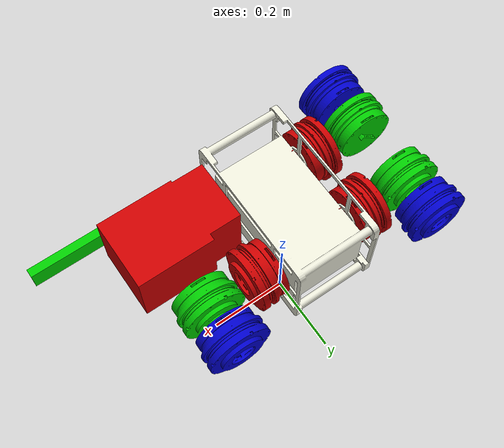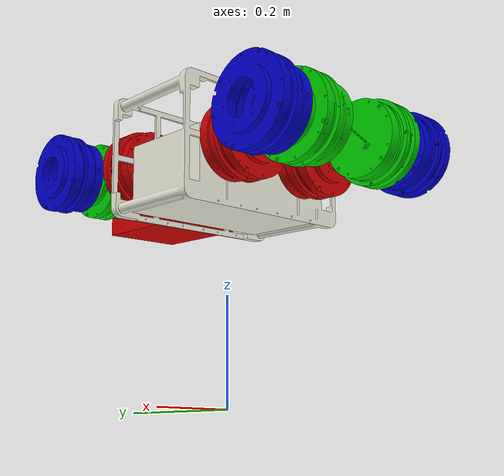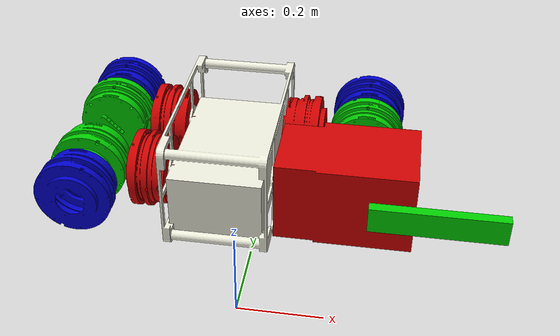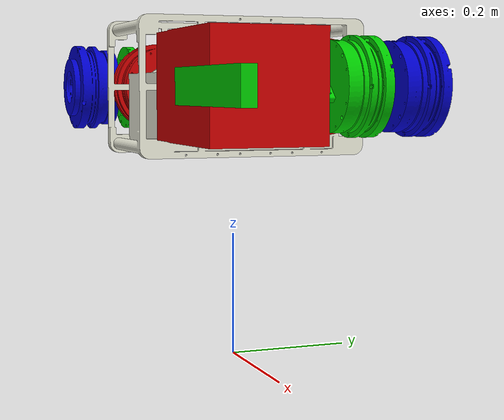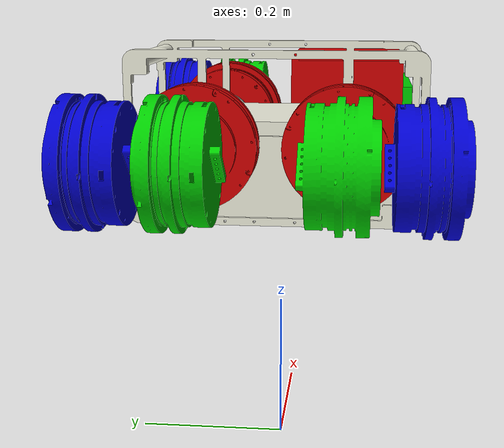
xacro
<?xml version="1.0"?>
<robot name="aidin_m1">

  <material name="black">
    <color rgba="0.0 0.0 0.0 1.0"/>
  </material>
  <material name="blue">
    <color rgba="0.0 0.0 0.8 1.0"/>
  </material>
  <material name="green">
    <color rgba="0.0 0.8 0.0 1.0"/>
  </material>
  <material name="grey">
    <color rgba="0.2 0.2 0.2 1.0"/>
  </material>
  <material name="silver">
    <color rgba="0.913725490196 0.913725490196 0.847058823529 1.0"/>
  </material>
  <material name="orange">
    <color rgba="1.0 0.423529411765 0.0392156862745 1.0"/>
  </material>
  <material name="brown">
    <color rgba="0.870588235294 0.811764705882 0.764705882353 1.0"/>
  </material>
  <material name="red">
    <color rgba="0.8 0.0 0.0 1.0"/>
  </material>
  <material name="yellow">
    <color rgba="0.8 0.8 0.0 1.0"/>
  </material>
  <material name="white">
    <color rgba="1.0 1.0 1.0 1.0"/>
  </material>

<!--////////////////////////////////   Odom    ////////////////////////////////-->

  <!-- "world" link -->
  <link name="world"/>
  <gazebo reference="world">
    <static>true</static>
  </gazebo>

  <joint name="odom_joint" type="fixed">
    <child link="body"/>
    <parent link="world"/>
    <origin xyz="0 0 0.440" rpy="0 0 0"/>
  </joint>

<!--////////////////////////////////   Body    ////////////////////////////////-->

  <link name="body">
    <inertial>
      <mass value="10"/>
      <origin xyz="0 0 0" rpy="0 0 0"/>
      <inertia ixx="0.15296333" ixy="0" ixz="0" iyy="0.07221333" iyz="0" izz="0.1474166667"/>
    </inertial>

    <collision>
      <origin xyz="0 0 0" rpy="0 0 0"/>
      <geometry>
        <box size="0.200 0.370 0.216"/>
      </geometry>
    </collision>

    <visual name="body_visual">
      <origin xyz="0 0 0" rpy="0 0 0"/>
      <geometry>
        <mesh filename="/home/eunseop/dev_ws/src/m1/meshes/body_1.stl" scale="0.001 0.001 0.001"/>
      </geometry>
      <material name="silver"/>
    </visual>
  </link>
  <gazebo reference="body">
    <material>Gazebo/DarkGrey</material>
  </gazebo>

<!--//////////////////////////////// RF LINKS /////////////////////////////////-->

  <link name="RF_scap">
    <inertial>
      <mass value="6"/>
      <origin xyz="0 0 0" rpy="0 0 0"/>
      <inertia ixx="0.73716790" ixy="0.130721360" ixz="0" iyy="0.431162858" iyz="0" izz="0.477083568"/>
    </inertial>

    <collision>
      <origin xyz="0 0 0" rpy="0 0 0"/>
      <geometry>
        <cylinder length="0.0760" radius="0.0730"/>
      </geometry>
    </collision>

    <visual name="RF_scap_vis_cover">
      <origin xyz="0 0 0" rpy="0 0 0"/>
      <geometry>
        <mesh filename="/home/eunseop/dev_ws/src/m1/meshes/sc_cover_RF_1.stl" scale="0.001 0.001 0.001"/>
      </geometry>
      <material name="red"/>
    </visual>
  </link>
  <gazebo reference="RF_scap">
    <material>Gazebo/Red</material>
  </gazebo>

  <link name="RF_hip">
    <inertial>
      <mass value="0.600"/>
      <origin xyz="-0.125 0 0" rpy="0 0 0"/>
      <inertia ixx="0.001541527" ixy="0.000007051" ixz="-0.000001356" iyy="0.001938779" iyz="0.000000659" izz="0.001547151"/>
    </inertial>

    <collision>
      <origin xyz="-0.125 0 0" rpy="0 0 0"/>
      <geometry>
        <cylinder length="0.0760" radius="0.0730"/>
      </geometry>
    </collision>

    <visual name="RF_hip_vis_cover">
      <origin xyz="-0.125 0 0" rpy="0 0 0"/>
      <geometry>
        <box size="0.250 0.050 0.020"/>
      </geometry>
      <material name="green"/>
    </visual>
  </link>
  <gazebo reference="RF_hip">
    <material>Gazebo/Green</material>
  </gazebo>

<!--//////////////////////////////// RF JOINTS ////////////////////////////////-->

  <joint name="RFJ_scap" type="revolute">
    <parent link="body"/>
    <child link="RF_scap"/>
    <origin xyz="0.282 -0.08750 0" rpy="-1.57079 0 -1.57079"/>
    <axis xyz="0 0 1"/>
    <limit lower="-3.14" upper="3.14" effort="50.0" velocity="10"/> <!--I dont know what it is-->
    <dynamics damping="0.7"/>
  </joint>

  <joint name="RFJ_hip" type="revolute">
    <parent link="RF_scap"/>
    <child link="RF_hip"/>
    <origin xyz="0.088 0 0" rpy="-1.57079  1.57079 -1.57079"/>
    <axis xyz="0 0 1"/>
    <limit lower="-3.14" upper="3.14" effort="50.0" velocity="10"/>
    <dynamics damping="0.7"/>
  </joint>

<!--//////////////////////////////// LF LINKS /////////////////////////////////-->

  <link name="LF_scap">
    <inertial>
      <mass value="1.80"/>
      <origin xyz="0 0 0" rpy="0 0 0"/>
      <inertia ixx="0.001541527" ixy="0.000007051" ixz="-0.000001356" iyy="0.001938779" iyz="0.000000659" izz="0.001547151"/>
    </inertial>

    <collision>
      <origin xyz="0 0 0" rpy="0 0 0"/>
      <geometry>
        <cylinder length="0.0760" radius="0.0730"/>
      </geometry>
    </collision>

    <visual name="LF_scap_vis_cover">
      <origin xyz="0 0 0" rpy="0 0 0"/>
      <geometry>
        <mesh filename="/home/eunseop/dev_ws/src/m1/meshes/actuator_1.stl" scale="0.001 0.001 0.001"/>
      </geometry>
      <material name="red"/>
    </visual>
  </link>
  <gazebo reference="LF_scap">
    <material>Gazebo/Red</material>
  </gazebo>

  <link name="LF_hip">
    <inertial>
      <mass value="1.80"/>
      <origin xyz="0 0 0" rpy="0 0 0"/>
      <inertia ixx="0.001541527" ixy="0.000007051" ixz="-0.000001356" iyy="0.001938779" iyz="0.000000659" izz="0.001547151"/>
    </inertial>

    <collision>
      <origin xyz="0 0 0" rpy="0 0 0"/>
      <geometry>
        <cylinder length="0.0760" radius="0.0730"/>
      </geometry>
    </collision>

    <visual name="LF_hip_vis_cover">
      <origin xyz="0 0 0" rpy="0 0 0"/>
      <geometry>
        <mesh filename="/home/eunseop/dev_ws/src/m1/meshes/actuator_1.stl" scale="0.001 0.001 0.001"/>
      </geometry>
      <material name="green"/>
    </visual>
  </link>
  <gazebo reference="LF_hip">
    <material>Gazebo/Green</material>
  </gazebo>

  <link name="LF_knee">
    <inertial>
      <mass value="1.80"/>
      <origin xyz="0 0 0" rpy="0 0 0"/>
      <inertia ixx="0.001541527" ixy="0.000007051" ixz="-0.000001356" iyy="0.001938779" iyz="0.000000659" izz="0.001547151"/>
    </inertial>

    <collision>
      <origin xyz="0 0 0" rpy="0 0 0"/>
      <geometry>
        <cylinder length="0.0760" radius="0.0730"/>
      </geometry>
    </collision>

    <visual name="LF_knee_vis_cover">
      <origin xyz="0 0 0" rpy="0 0 0"/>
      <geometry>
        <mesh filename="/home/eunseop/dev_ws/src/m1/meshes/actuator_1.stl" scale="0.001 0.001 0.001"/>
      </geometry>
      <material name="blue"/>
    </visual>
  </link>
  <gazebo reference="LF_knee">
    <material>Gazebo/Blue</material>
  </gazebo>

<!--//////////////////////////////// LF JOINTS ////////////////////////////////-->

  <joint name="LFJ_scap" type="continuous">
    <parent link="body"/>
    <child link="LF_scap"/>
    <origin xyz="0.138 0.08750 0" rpy="0 1.5708 0"/>
    <axis xyz="0 0 1"/>
    <dynamics damping="0.7"/>
  </joint>

  <joint name="LFJ_hip" type="continuous">
    <parent link="LF_scap"/>
    <child link="LF_hip"/>
    <origin xyz="0 0 0.122" rpy="-1.5708 0 0"/>
    <axis xyz="0 0 1"/>
    <dynamics damping="0.7"/>
  </joint>

  <joint name="LFJ_knee" type="continuous">
    <parent link="LF_hip"/>
    <child link="LF_knee"/>
    <origin xyz="0 0 0.091" rpy="0 0 0"/>
    <axis xyz="0 0 1"/>
    <dynamics damping="0.7"/>
  </joint>

<!--//////////////////////////////// LB LINKS /////////////////////////////////-->

  <link name="LB_scap">
    <inertial>
      <mass value="1.80"/>
      <origin xyz="0 0 0" rpy="0 0 0"/>
      <inertia ixx="0.001541527" ixy="0.000007051" ixz="-0.000001356" iyy="0.001938779" iyz="0.000000659" izz="0.001547151"/>
    </inertial>

    <collision>
      <origin xyz="0 0 0" rpy="0 0 0"/>
      <geometry>
        <cylinder length="0.0760" radius="0.0730"/>
      </geometry>
    </collision>

    <visual name="LB_scap_vis_cover">
      <origin xyz="0 0 0" rpy="0 0 0"/>
      <geometry>
        <mesh filename="/home/eunseop/dev_ws/src/m1/meshes/actuator_1.stl" scale="0.001 0.001 0.001"/>
      </geometry>
      <material name="red"/>
    </visual>
  </link>
  <gazebo reference="LB_scap">
    <material>Gazebo/Red</material>
  </gazebo>

  <link name="LB_hip">
    <inertial>
      <mass value="1.80"/>
      <origin xyz="0 0 0" rpy="0 0 0"/>
      <inertia ixx="0.001541527" ixy="0.000007051" ixz="-0.000001356" iyy="0.001938779" iyz="0.000000659" izz="0.001547151"/>
    </inertial>

    <collision>
      <origin xyz="0 0 0" rpy="0 0 0"/>
      <geometry>
        <cylinder length="0.0760" radius="0.0730"/>
      </geometry>
    </collision>

    <visual name="LB_hip_vis_cover">
      <origin xyz="0 0 0" rpy="0 0 0"/>
      <geometry>
        <mesh filename="/home/eunseop/dev_ws/src/m1/meshes/actuator_1.stl" scale="0.001 0.001 0.001"/>
      </geometry>
      <material name="green"/>
    </visual>
  </link>
  <gazebo reference="LB_hip">
    <material>Gazebo/Green</material>
  </gazebo>

  <link name="LB_knee">
    <inertial>
      <mass value="1.80"/>
      <origin xyz="0 0 0" rpy="0 0 0"/>
      <inertia ixx="0.001541527" ixy="0.000007051" ixz="-0.000001356" iyy="0.001938779" iyz="0.000000659" izz="0.001547151"/>
    </inertial>

    <collision>
      <origin xyz="0 0 0" rpy="0 0 0"/>
      <geometry>
        <cylinder length="0.0760" radius="0.0730"/>
      </geometry>
    </collision>

    <visual name="LB_knee_vis_cover">
      <origin xyz="0 0 0" rpy="0 0 0"/>
      <geometry>
        <mesh filename="/home/eunseop/dev_ws/src/m1/meshes/actuator_1.stl" scale="0.001 0.001 0.001"/>
      </geometry>
      <material name="blue"/>
    </visual>
  </link>
  <gazebo reference="LB_knee">
    <material>Gazebo/Blue</material>
  </gazebo>

<!--//////////////////////////////// LB JOINTS ////////////////////////////////-->

  <joint name="LBJ_scap" type="continuous">
    <parent link="body"/>
    <child link="LB_scap"/>
    <origin xyz="-0.138 0.08750 0" rpy="0 1.5708 3.14159"/>
    <axis xyz="0 0 1"/>
    <dynamics damping="0.7"/>
  </joint>

  <joint name="LBJ_hip" type="continuous">
    <parent link="LB_scap"/>
    <child link="LB_hip"/>
    <origin xyz="0 0 0.122" rpy="1.5708 0 0"/>
    <axis xyz="0 0 1"/>
    <dynamics damping="0.7"/>
  </joint>

  <joint name="LBJ_knee" type="continuous">
    <parent link="LB_hip"/>
    <child link="LB_knee"/>
    <origin xyz="0 0 0.091" rpy="0 0 0"/>
    <axis xyz="0 0 1"/>
    <dynamics damping="0.7"/>
  </joint>

<!--//////////////////////////////// RB LINKS /////////////////////////////////-->

  <link name="RB_scap">
    <inertial>
      <mass value="1.80"/>
      <origin xyz="0 0 0" rpy="0 0 0"/>
      <inertia ixx="0.001541527" ixy="0.000007051" ixz="-0.000001356" iyy="0.001938779" iyz="0.000000659" izz="0.001547151"/>
    </inertial>

    <collision>
      <origin xyz="0 0 0" rpy="0 0 0"/>
      <geometry>
        <cylinder length="0.0760" radius="0.0730"/>
      </geometry>
    </collision>

    <visual name="RB_scap_vis_cover">
      <origin xyz="0 0 0" rpy="0 0 0"/>
      <geometry>
        <mesh filename="/home/eunseop/dev_ws/src/m1/meshes/actuator_1.stl" scale="0.001 0.001 0.001"/>
      </geometry>
      <material name="red"/>
    </visual>
  </link>
  <gazebo reference="RB_scap">
    <material>Gazebo/Red</material>
  </gazebo>

  <link name="RB_hip">
    <inertial>
      <mass value="1.80"/>
      <origin xyz="0 0 0" rpy="0 0 0"/>
      <inertia ixx="0.001541527" ixy="0.000007051" ixz="-0.000001356" iyy="0.001938779" iyz="0.000000659" izz="0.001547151"/>
    </inertial>

    <collision>
      <origin xyz="0 0 0" rpy="0 0 0"/>
      <geometry>
        <cylinder length="0.0760" radius="0.0730"/>
      </geometry>
    </collision>

    <visual name="RB_hip_vis_cover">
      <origin xyz="0 0 0" rpy="0 0 0"/>
      <geometry>
        <mesh filename="/home/eunseop/dev_ws/src/m1/meshes/actuator_1.stl" scale="0.001 0.001 0.001"/>
      </geometry>
      <material name="green"/>
    </visual>
  </link>
  <gazebo reference="RB_hip">
    <material>Gazebo/Green</material>
  </gazebo>

  <link name="RB_knee">
    <inertial>
      <mass value="1.80"/>
      <origin xyz="0 0 0" rpy="0 0 0"/>
      <inertia ixx="0.001541527" ixy="0.000007051" ixz="-0.000001356" iyy="0.001938779" iyz="0.000000659" izz="0.001547151"/>
    </inertial>

    <collision>
      <origin xyz="0 0 0" rpy="0 0 0"/>
      <geometry>
        <cylinder length="0.0760" radius="0.0730"/>
      </geometry>
    </collision>

    <visual name="RB_knee_vis_cover">
      <origin xyz="0 0 0" rpy="0 0 0"/>
      <geometry>
        <mesh filename="/home/eunseop/dev_ws/src/m1/meshes/actuator_1.stl" scale="0.001 0.001 0.001"/>
      </geometry>
      <material name="blue"/>
    </visual>
  </link>
  <gazebo reference="RB_knee">
    <material>Gazebo/Blue</material>
  </gazebo>

<!--//////////////////////////////// RB JOINTS ////////////////////////////////-->

  <joint name="RBJ_scap" type="continuous">
    <parent link="body"/>
    <child link="RB_scap"/>
    <origin xyz="-0.138 -0.08750 0" rpy="0 1.5708 3.14159"/>
    <axis xyz="0 0 1"/>
    <dynamics damping="0.7"/>
  </joint>

  <joint name="RBJ_hip" type="continuous">
    <parent link="RB_scap"/>
    <child link="RB_hip"/>
    <origin xyz="0 0 0.122" rpy="-1.5708 0 0"/>
    <axis xyz="0 0 1"/>
    <dynamics damping="0.7"/>
  </joint>

  <joint name="RBJ_knee" type="continuous">
    <parent link="RB_hip"/>
    <child link="RB_knee"/>
    <origin xyz="0 0 0.091" rpy="0 0 0"/>
    <axis xyz="0 0 1"/>
    <dynamics damping="0.7"/>
  </joint>

<!--//////////////////////////////// Sensor - Lidar //////////////////////////////////-->

<!--//////////////////////////////// Sensor - Camera ////////////////////////////////-->
<!-- camera names -->

<!--/////////////////////////////// Camera Upper //////////////////////////////////-->

<!--/////////////////////////////// Camera Lower //////////////////////////////////-->

<!--/////////////////////////////// Camera Left //////////////////////////////////-->

<!--/////////////////////////////// Camera Back //////////////////////////////////-->

<!--/////////////////////////////// Camera Right //////////////////////////////////-->

<!--//////////////////////////////// Aidin_m1 Plugin ////////////////////////////////-->

  <gazebo>
    <plugin name="m1_plugin" filename="libm1_plugin.so">
      <update_rate>20</update_rate> <!--necessary?-->
      <joint_name>RFJ_scap</joint_name> <!--This is necessary in ROS2 to control (revolute) joint using plugin.-->
      <joint_name>RFJ_hip</joint_name>
    </plugin>
  </gazebo>

</robot>
